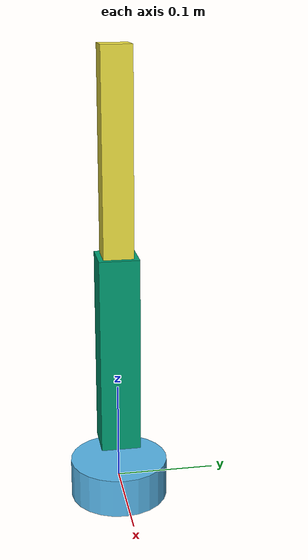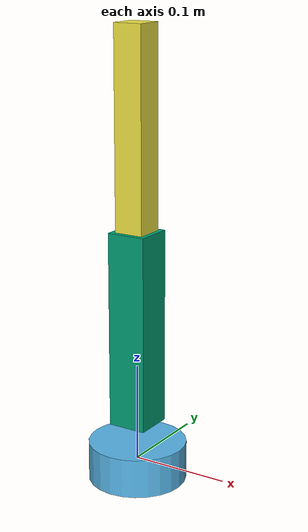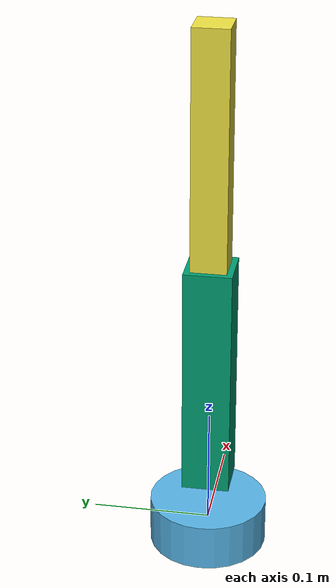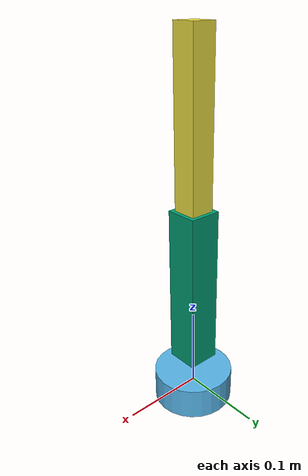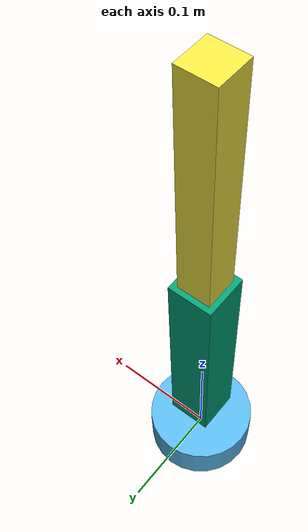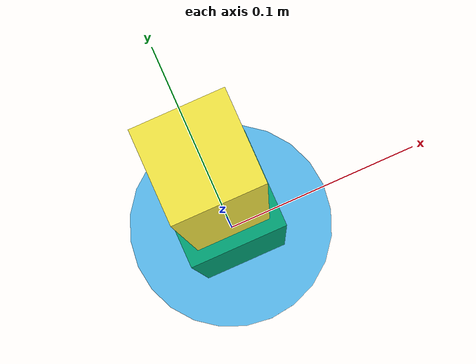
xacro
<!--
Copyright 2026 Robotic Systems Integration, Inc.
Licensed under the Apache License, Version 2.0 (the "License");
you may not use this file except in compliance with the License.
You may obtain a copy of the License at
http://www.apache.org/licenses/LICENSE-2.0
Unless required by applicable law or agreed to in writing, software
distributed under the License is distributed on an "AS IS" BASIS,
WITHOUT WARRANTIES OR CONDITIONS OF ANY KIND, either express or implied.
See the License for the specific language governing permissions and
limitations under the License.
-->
<?xml version="1.0"?>
<robot xmlns:xacro="http://www.ros.org/wiki/xacro" name="rapidcode_two_axis">

  <xacro:arg name="use_hardware" default="false"/>

  <xacro:property name="chunk_capacity" value="64"/>
  <xacro:property name="num_joints" value="2"/>

  <!-- macro to add the 4 fields in a slot for a particular joint -->
  <xacro:macro name="traj_add_joint_in_slot" params="joint slot">
    <command_interface name="j${joint}_s${slot}_position"/>
    <command_interface name="j${joint}_s${slot}_velocity"/>
    <command_interface name="j${joint}_s${slot}_acceleration"/>
    <command_interface name="j${joint}_s${slot}_jerk"/>
  </xacro:macro>

  <!-- macro to recursively apply traj_add_joint_in_slot to joints 0..num_joints-1 within one slot -->
  <xacro:macro name="traj_add_slot" params="slot joint num_joints">
    <xacro:if value="${joint &lt; num_joints}">
      <xacro:traj_add_joint_in_slot joint="${joint}" slot="${slot}"/>
      <xacro:traj_add_slot slot="${slot}" joint="${joint + 1}" num_joints="${num_joints}"/>
    </xacro:if>
  </xacro:macro>

  <!-- macro to recursively apply traj_add_slot to slots 0..num_slots-1 -->
  <xacro:macro name="traj_populate_slots" params="slot num_slots num_joints">
    <xacro:if value="${slot &lt; num_slots}">
      <command_interface name="s${slot}_duration"/>
      <xacro:traj_add_slot slot="${slot}" joint="0" num_joints="${num_joints}"/>
      <xacro:traj_populate_slots slot="${slot + 1}" num_slots="${num_slots}" num_joints="${num_joints}"/>
    </xacro:if>
  </xacro:macro>

  <link name="world"/>

  <link name="base_link">
    <visual>
      <geometry>
        <cylinder radius="0.05" length="0.04"/>
      </geometry>
    </visual>
  </link>

  <joint name="base_joint" type="fixed">
    <parent link="world"/>
    <child link="base_link"/>
  </joint>

  <link name="link1">
    <visual>
      <origin xyz="0 0 0.1" rpy="0 0 0"/>
      <geometry>
        <box size="0.04 0.04 0.2"/>
      </geometry>
    </visual>
  </link>

  <joint name="joint1" type="revolute">
    <parent link="base_link"/>
    <child link="link1"/>
    <origin xyz="0 0 0.04" rpy="0 0 0"/>
    <axis xyz="0 0 1"/>
    <limit lower="-3.14159" upper="3.14159" effort="100.0" velocity="3.14159"/>
  </joint>

  <!-- Second link/joint stacked on the first so both DOF are visible in RViz. -->
  <link name="link2">
    <visual>
      <origin xyz="0 0 0.1" rpy="0 0 0"/>
      <geometry>
        <box size="0.03 0.03 0.2"/>
      </geometry>
    </visual>
  </link>

  <joint name="joint2" type="revolute">
    <parent link="link1"/>
    <child link="link2"/>
    <origin xyz="0 0 0.2" rpy="0 0 0"/>
    <axis xyz="0 1 0"/>
    <limit lower="-3.14159" upper="3.14159" effort="100.0" velocity="3.14159"/>
  </joint>

  <ros2_control name="RapidCodeSystem" type="system">
    <hardware>
      <plugin>rapidcode_system/RapidCodeSystemHardware</plugin>
      <param name="use_hardware">$(arg use_hardware)</param>
      <param name="primary_nic"></param>
      <param name="cpu_affinity">1</param>  <!-- any core but 0; phantom needs no isolation -->
      <param name="sample_rate">1000.0</param>
    </hardware>
    <joint name="joint1">
      <param name="axis">0</param>
      <param name="user_units">1000</param>

      <state_interface name="position"/>
      <state_interface name="velocity"/>
    </joint>
    <joint name="joint2">
      <param name="axis">1</param>
      <param name="user_units">1000</param>
      <state_interface name="position"/>
      <state_interface name="velocity"/>
    </joint>

    <gpio name="trajectory_transfer">
      <!-- transfer-level scalars-->
      <command_interface name="command_token"/>
      <command_interface name="command_sequence"/>
      <command_interface name="trajectory_id"/>
      <command_interface name="trajectory_size"/>
      <command_interface name="valid_fields"/>
      <command_interface name="chunk_base_index"/>
      <command_interface name="chunk_len"/>
      <command_interface name="chunk_final"/>
      <!-- per-slot duration + per-joint-per_slot P/V/A/J/T-->
      <xacro:traj_populate_slots slot="0" num_slots="${chunk_capacity}" num_joints="${num_joints}"/>
      <!-- state -->
      <state_interface name="is_moving"/>
      <state_interface name="ack_sequence"/>
      <state_interface name="accepted_point_index"/>
      <state_interface name="error_code"/>
    </gpio>
  </ros2_control>

</robot>
